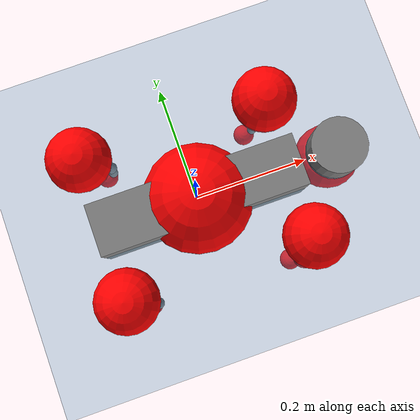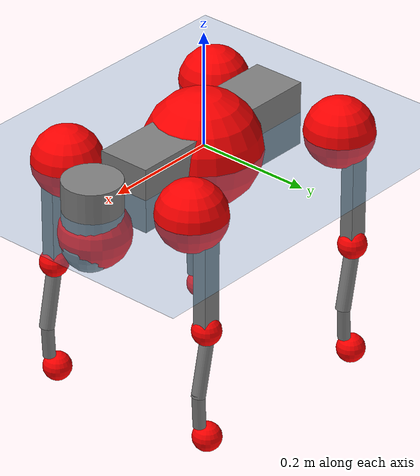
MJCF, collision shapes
<mujoco model="go2">
  <compiler angle="radian" assetdir="assets" balanceinertia="true" inertiafromgeom="false"/>

  <option timestep="0.005" density="1.2" viscosity="2e-05"/>

  <size nkey="1"/>

  <visual>
    <quality shadowsize="8192"/>
    <map shadowclip="0.5"/>
  </visual>

  <default>
    <default class="/">
      <geom contype="0" conaffinity="0" group="1" solref="-1000 -80"/>
      <site size="0.01 0.005 0.005" group="5"/>
      <general forcelimited="true" biastype="affine" gainprm="20" biasprm="0 -20 -0.5"/>
      <default class="go2">
        <joint armature="0.01" damping="0.01" frictionloss="0.2"/>
        <geom condim="1" margin="0.001"/>
        <default class="visual">
          <geom type="mesh" group="2"/>
        </default>
        <default class="collision">
          <geom group="3"/>
          <default class="foot">
            <geom size="0.022 0 0" condim="6" priority="1" friction="0.8 0.02 0.01" solimp="0.015 1 0.022"/>
          </default>
        </default>
        <default class="reward_collision_sphere">
          <geom group="5" rgba="1 0 0 1"/>
        </default>
      </default>
    </default>
  </default>

  <asset>
    <texture type="skybox" colorspace="auto" name="//unnamed_texture_0" builtin="gradient" rgb1="0.95 0.95 0.95" rgb2="0.95 0.95 0.95" width="100" height="600"/>
    <texture type="2d" colorspace="auto" name="texplane" builtin="checker" rgb1="0.345 0.575 0.748" rgb2="0.345 0.575 0.748" markrgb="1 1 1" width="512" height="512"/>
    <material name="MatPlane" class="/" texture="texplane" texuniform="true" texrepeat="2 2" specular="0.9"/>
    <material name="metal" class="/" rgba="0.9 0.95 0.95 1"/>
    <material name="black" class="/" rgba="0 0 0 1"/>
    <material name="white" class="/"/>
    <material name="gray" class="/" rgba="0.671705 0.692426 0.77427 1"/>
    <mesh name="base_0" class="/" file="base_0.obj"/>
    <mesh name="base_1" class="/" file="base_1.obj"/>
    <mesh name="base_2" class="/" file="base_2.obj"/>
    <mesh name="base_3" class="/" file="base_3.obj"/>
    <mesh name="base_4" class="/" file="base_4.obj"/>
    <mesh name="hip_0" class="/" file="hip_0.obj"/>
    <mesh name="hip_1" class="/" file="hip_1.obj"/>
    <mesh name="thigh_0" class="/" file="thigh_0.obj"/>
    <mesh name="thigh_1" class="/" file="thigh_1.obj"/>
    <mesh name="thigh_mirror_0" class="/" file="thigh_mirror_0.obj"/>
    <mesh name="thigh_mirror_1" class="/" file="thigh_mirror_1.obj"/>
    <mesh name="calf_0" class="/" file="calf_0.obj"/>
    <mesh name="calf_1" class="/" file="calf_1.obj"/>
    <mesh name="calf_mirror_0" class="/" file="calf_mirror_0.obj"/>
    <mesh name="calf_mirror_1" class="/" file="calf_mirror_1.obj"/>
    <mesh name="foot" class="/" file="foot.obj"/>
  </asset>

  <worldbody>
    <geom name="floor" class="/" size="100 100 0.125" type="plane" group="0" material="MatPlane"/>
    <light name="toplight_shadow" class="/" pos="0 0 5" dir="0.0990148 0.0990148 -0.990148" type="directional" ambient="0.04 0.04 0.04" diffuse="0.55 0.55 0.55" specular="0.12 0.12 0.12"/>
    <light name="toplight_fill" class="/" pos="0 0 5" dir="0.0990148 0.0990148 -0.990148" type="directional" castshadow="false" ambient="0.04 0.04 0.04" diffuse="0.3 0.3 0.3" specular="0.08 0.08 0.08"/>
    <body name="trunk" childclass="go2" pos="0.00115636 -0.00169237 -0.00271516" quat="1 -0.000135612 -9.16759e-06 0.000355527">
      <inertial pos="0.0204774 0.000205253 -0.00435531" quat="0.00530023 0.709732 -0.0127744 0.704336" mass="6.73352" diaginertia="0.058802 0.168284 0.017186"/>
      <joint name="//unnamed_joint_0" type="free" armature="0" damping="0" frictionloss="0"/>
      <geom name="//unnamed_geom_1" class="visual" material="black" mesh="base_0"/>
      <geom name="//unnamed_geom_2" class="visual" material="black" mesh="base_1"/>
      <geom name="//unnamed_geom_3" class="visual" material="black" mesh="base_2"/>
      <geom name="//unnamed_geom_4" class="visual" material="white" mesh="base_3"/>
      <geom name="//unnamed_geom_5" class="visual" material="gray" mesh="base_4"/>
      <geom name="trunk_1" class="collision" size="0.183835 0.0456899 0.0557074" type="box"/>
      <geom name="trunk_2" class="collision" size="0.0488662 0.0439796" pos="0.253718 0 0.00929704" type="cylinder"/>
      <geom name="trunk_3" class="collision" size="0.0459342" pos="0.26084 0 -0.0557822"/>
      <geom name="//unnamed_geom_9" class="reward_collision_sphere" size="0.0977323"/>
      <geom name="//unnamed_geom_10" class="reward_collision_sphere" size="0.0586394" pos="0.249267 0 -0.0418367"/>
      <site name="imu" pos="-0.0274945 0.0133302 0.0280478" size="0.00977323"/>
      <camera name="track" pos="0 -2.22406 0" quat="0.707107 0.707107 0 0" mode="trackcom"/>
      <camera name="ego_camera" pos="0.277754 0 0.0418367" quat="-0.5 -0.5 0.5 0.5"/>
      <body name="FL_hip" pos="0.170019 0.0494202 0.002541" quat="1 -7.34169e-05 -0.000218103 -0.00050892">
        <inertial pos="-0.00297958 -0.000230164 -0.00269796" quat="0.496395 0.502137 0.504077 0.49735" mass="0.628648" diaginertia="0.000488293 0.0010231 0.000344197"/>
        <joint name="FL_hip_joint" pos="0 0 0" axis="0.999952 0.00784227 -0.0058458" range="-1.0392 1.04505" armature="0.0103644" damping="0.000633614" frictionloss="0.222287"/>
        <geom name="//unnamed_geom_11" class="visual" material="metal" mesh="hip_0"/>
        <geom name="//unnamed_geom_12" class="visual" material="gray" mesh="hip_1"/>
        <geom name="//unnamed_geom_13" class="collision" size="0.0449569 0.0195465" pos="0 0.0889623 0" quat="0.707107 0.707107 0 0" type="cylinder"/>
        <geom name="//unnamed_geom_14" class="reward_collision_sphere" size="0.0586394" pos="0 0.077842 0"/>
        <body name="FL_thigh" pos="-0.000433954 0.106612 0.00279375" quat="1 0.000149618 1.23084e-05 0.000450763">
          <inertial pos="-0.00449165 -0.0245505 -0.0305968" quat="0.829372 0.0827164 -0.0196131 0.552191" mass="1.0427" diaginertia="0.00331558 0.0101658 0.000587247"/>
          <joint name="FL_thigh_joint" pos="0 0 0" axis="0.00174957 0.999961 -0.00870051" range="-1.58374 3.51223" armature="0.0103493" damping="0.0117131" frictionloss="0.221326"/>
          <geom name="//unnamed_geom_15" class="visual" material="metal" mesh="thigh_0"/>
          <geom name="//unnamed_geom_16" class="visual" material="gray" mesh="thigh_1"/>
          <geom name="//unnamed_geom_17" class="collision" size="0.104085 0.0119722 0.0166145" pos="0 0 -0.0990135" quat="0.707107 0 0.707107 0" type="box"/>
          <body name="FL_calf" pos="-0.00019076 0.00071699 -0.198469" quat="0.999999 -0.000920468 -0.000285722 0.000409597">
            <inertial pos="0.00786699 0.00194967 -0.132748" quat="0.710702 0.00147357 -0.00454192 0.703477" mass="0.231287" diaginertia="0.000804759 0.00256422 3.59296e-05"/>
            <joint name="FL_calf_joint" pos="0 0 0" axis="-0.000292691 1 0.000191606" range="-2.72927 -0.847573" armature="0.00842944" damping="0.00133908" frictionloss="0.188423"/>
            <geom name="//unnamed_geom_18" class="visual" material="gray" mesh="calf_0"/>
            <geom name="//unnamed_geom_19" class="visual" material="black" mesh="calf_1"/>
            <geom name="FL_calf0" class="collision" size="0.0117279 0.0586394" pos="0.0071219 0 -0.0557822" quat="0.994493 0 -0.104807 0" type="cylinder"/>
            <geom name="//unnamed_geom_21" class="collision" size="0.0107506 0.031763" pos="0.0178048 0 -0.137596" quat="0.999688 0 0.0249974 0" type="cylinder"/>
            <geom name="//unnamed_geom_22" class="visual" pos="0 0 -0.198027" quat="1 0 0 0" material="black" mesh="foot"/>
            <geom name="FL_foot" class="foot" size="0.0232206" pos="-0.00178048 0 -0.198027"/>
            <geom name="//unnamed_geom_24" class="reward_collision_sphere" size="0.0244331"/>
            <geom name="//unnamed_geom_25" class="reward_collision_sphere" size="0.0244331" pos="-0.00178048 0 -0.198027"/>
            <site name="FL_foot" class="foot" pos="-0.00178048 0 -0.198027" size="0.00977323"/>
          </body>
        </body>
      </body>
      <body name="FR_hip" pos="0.171537 -0.0519699 0.00065679" quat="0.999999 -0.00115788 0.000529614 -0.000594295">
        <inertial pos="-0.00398762 0.000114685 -0.000437192" quat="0.496667 0.508223 0.500085 0.49492" mass="0.623697" diaginertia="0.000498969 0.00101265 0.000331581"/>
        <joint name="FR_hip_joint" pos="0 0 0" axis="0.999999 3.57758e-06 -0.00110712" stiffness="0.00167836" range="-1.0008 1.04804" armature="0.010517" damping="0.00306379" frictionloss="0.182663"/>
        <geom name="//unnamed_geom_26" class="visual" pos="0 1.58834e-09 6.81271e-08" quat="4.63268e-05 1 0 0" material="metal" mesh="hip_0"/>
        <geom name="//unnamed_geom_27" class="visual" pos="0 2.57489e-09 -1.68504e-07" quat="4.63268e-05 1 0 0" material="gray" mesh="hip_1"/>
        <geom name="//unnamed_geom_28" class="collision" size="0.0449569 0.0195465" pos="0 -0.0889623 0" quat="0.707107 0.707107 0 0" type="cylinder"/>
        <geom name="//unnamed_geom_29" class="reward_collision_sphere" size="0.0586394" pos="0 -0.077842 0"/>
        <body name="FR_thigh" pos="-0.000389378 -0.108595 -0.000256837" quat="1 -0.000259478 4.87013e-05 1.94336e-05">
          <inertial pos="-0.00480811 0.026556 -0.0326761" quat="0.550733 -0.0204567 0.0882238 0.829754" mass="1.06563" diaginertia="0.00319444 0.00927517 0.000583943"/>
          <joint name="FR_thigh_joint" pos="0 0 0" axis="-0.00195299 -0.999895 -0.0143487" range="-3.53949 1.51373" armature="0.00968661" damping="0.005503" frictionloss="0.222388"/>
          <geom name="//unnamed_geom_30" class="visual" material="metal" mesh="thigh_mirror_0"/>
          <geom name="//unnamed_geom_31" class="visual" material="gray" mesh="thigh_mirror_1"/>
          <geom name="//unnamed_geom_32" class="collision" size="0.104085 0.0119722 0.0166145" pos="0 0 -0.0990135" quat="0.707107 0 0.707107 0" type="box"/>
          <body name="FR_calf" pos="0.00200414 -0.00109486 -0.198081" quat="1 8.19698e-05 -1.48665e-05 1.29914e-05">
            <inertial pos="0.00813781 0.000196841 -0.134015" quat="0.703209 -0.00438641 -0.00218842 0.710966" mass="0.233349" diaginertia="0.000843024 0.00246041 3.68269e-05"/>
            <joint name="FR_calf_joint" pos="0 0 0" axis="0.00127366 -0.999998 0.00182049" range="0.846478 2.72404" armature="0.00949753" damping="0.0210728" frictionloss="0.215724"/>
            <geom name="//unnamed_geom_33" class="visual" material="gray" mesh="calf_mirror_0"/>
            <geom name="//unnamed_geom_34" class="visual" material="black" mesh="calf_mirror_1"/>
            <geom name="FR_calf0" class="collision" size="0.0127052 0.0586394" pos="0.00890238 0 -0.0557822" quat="0.995004 0 -0.0998334 0" type="cylinder"/>
            <geom name="//unnamed_geom_36" class="collision" size="0.0107506 0.031763" pos="0.0178048 0 -0.137596" quat="0.999688 0 0.0249974 0" type="cylinder"/>
            <geom name="//unnamed_geom_37" class="visual" pos="0 0 -0.198027" quat="1 0 0 0" material="black" mesh="foot"/>
            <geom name="FR_foot" class="foot" size="0.0243575" pos="-0.00178048 0 -0.198027"/>
            <geom name="//unnamed_geom_39" class="reward_collision_sphere" size="0.0244331"/>
            <geom name="//unnamed_geom_40" class="reward_collision_sphere" size="0.0244331" pos="-0.00178048 0 -0.198027"/>
            <site name="FR_foot" class="foot" pos="-0.00178048 0 -0.198027" size="0.00977323"/>
          </body>
        </body>
      </body>
      <body name="RL_hip" pos="-0.175292 0.0553325 0.00262545" quat="0.999999 0.00053198 0.000998455 -0.000667141">
        <inertial pos="0.00399113 0.00158933 0.00059617" quat="0.505566 0.497903 0.497004 0.499483" mass="0.641539" diaginertia="0.000488769 0.00102219 0.000321426"/>
        <joint name="RL_hip_joint" pos="0 0 0" axis="-0.999697 -0.0229453 -0.00894124" stiffness="0.00771484" range="-1.0777 1.05392" armature="0.00986915" damping="0.0130883" frictionloss="0.22177"/>
        <geom name="//unnamed_geom_41" class="visual" pos="3.4381e-10 0 6.73947e-08" quat="4.63268e-05 0 1 0" material="metal" mesh="hip_0"/>
        <geom name="//unnamed_geom_42" class="visual" pos="5.57357e-10 0 5.97695e-08" quat="4.63268e-05 0 1 0" material="gray" mesh="hip_1"/>
        <geom name="//unnamed_geom_43" class="collision" size="0.0449569 0.0195465" pos="0 0.0889623 0" quat="0.707107 0.707107 0 0" type="cylinder"/>
        <geom name="//unnamed_geom_44" class="reward_collision_sphere" size="0.0586394" pos="0 0.077842 0"/>
        <body name="RL_thigh" pos="0.00111353 0.109263 0.00145505" quat="1 -0.000336854 0.000307764 0.000205902">
          <inertial pos="-0.0022146 -0.0257237 -0.0316977" quat="0.829684 0.084644 -0.0201652 0.55141" mass="1.06766" diaginertia="0.00341987 0.00979529 0.000629278"/>
          <joint name="RL_thigh_joint" pos="0 0 0" axis="0.0027634 0.999996 -0.000795492" range="-0.536058 4.5572" armature="0.00893277" damping="0.0137451" frictionloss="0.169834"/>
          <geom name="//unnamed_geom_45" class="visual" material="metal" mesh="thigh_0"/>
          <geom name="//unnamed_geom_46" class="visual" material="gray" mesh="thigh_1"/>
          <geom name="//unnamed_geom_47" class="collision" size="0.104085 0.0119722 0.0166145" pos="0 0 -0.0990135" quat="0.707107 0 0.707107 0" type="box"/>
          <body name="RL_calf" pos="0.00182059 0.00164337 -0.194608" quat="1 0.000136104 5.70329e-05 7.08229e-05">
            <inertial pos="0.00553119 -0.00037261 -0.12911" quat="0.711124 -0.00058476 -0.00393465 0.703056" mass="0.226571" diaginertia="0.000829601 0.00244702 3.69922e-05"/>
            <joint name="RL_calf_joint" pos="0 0 0" axis="-5.33798e-05 0.999997 0.00231849" stiffness="0.00335553" range="-2.76825 -0.833512" armature="0.00857318" damping="0.0126357" frictionloss="0.205014"/>
            <geom name="//unnamed_geom_48" class="visual" material="gray" mesh="calf_0"/>
            <geom name="//unnamed_geom_49" class="visual" material="black" mesh="calf_1"/>
            <geom name="RL_calf0" class="collision" size="0.0127052 0.0586394" pos="0.00890238 0 -0.0557822" quat="0.995004 0 -0.0998334 0" type="cylinder"/>
            <geom name="//unnamed_geom_51" class="collision" size="0.0107506 0.031763" pos="0.0178048 0 -0.137596" quat="0.999688 0 0.0249974 0" type="cylinder"/>
            <geom name="//unnamed_geom_52" class="visual" pos="0 0 -0.198027" quat="1 0 0 0" material="black" mesh="foot"/>
            <geom name="RL_foot" class="foot" size="0.0216466" pos="-0.00178048 0 -0.198027"/>
            <geom name="//unnamed_geom_54" class="reward_collision_sphere" size="0.0244331"/>
            <geom name="//unnamed_geom_55" class="reward_collision_sphere" size="0.0244331" pos="-0.00178048 0 -0.198027"/>
            <site name="RL_foot" class="foot" pos="-0.00178048 0 -0.198027" size="0.00977323"/>
          </body>
        </body>
      </body>
      <body name="RR_hip" pos="-0.173718 -0.0498994 0.0014475" quat="0.999999 0.000955726 -0.000260275 -0.000182663">
        <inertial pos="0.00425861 -0.00131214 3.46847e-05" quat="0.498328 0.498508 0.498242 0.50489" mass="0.638901" diaginertia="0.000514889 0.00105246 0.000325754"/>
        <joint name="RR_hip_joint" pos="0 0 0" axis="-0.999981 -0.00346717 0.00504042" range="-1.02233 1.05741" armature="0.00925677" damping="0" frictionloss="0.194169"/>
        <geom name="//unnamed_geom_56" class="visual" pos="-3.36132e-10 1.58834e-09 -7.32439e-10" quat="2.14617e-09 4.63268e-05 4.63268e-05 -1" material="metal" mesh="hip_0"/>
        <geom name="//unnamed_geom_57" class="visual" pos="-5.76349e-10 2.57489e-09 2.28274e-07" quat="2.14617e-09 4.63268e-05 4.63268e-05 -1" material="gray" mesh="hip_1"/>
        <geom name="//unnamed_geom_58" class="collision" size="0.0449569 0.0195465" pos="0 -0.0889623 0" quat="0.707107 0.707107 0 0" type="cylinder"/>
        <geom name="//unnamed_geom_59" class="reward_collision_sphere" size="0.0586394" pos="0 -0.077842 0"/>
        <body name="RR_thigh" pos="0.000750522 -0.108114 5.56318e-05" quat="0.999999 0.000366227 -0.000302487 -0.000943751">
          <inertial pos="-0.00350008 0.0223284 -0.0311682" quat="0.550984 -0.0201553 0.0850281 0.829928" mass="1.00456" diaginertia="0.00310536 0.00964246 0.000592559"/>
          <joint name="RR_thigh_joint" pos="0 0 0" axis="-0.0060472 -0.999925 0.0106623" range="-4.52955 0.568549" armature="0.0109247" damping="0.00356267" frictionloss="0.173711"/>
          <geom name="//unnamed_geom_60" class="visual" material="metal" mesh="thigh_mirror_0"/>
          <geom name="//unnamed_geom_61" class="visual" material="gray" mesh="thigh_mirror_1"/>
          <geom name="//unnamed_geom_62" class="collision" size="0.104085 0.0119722 0.0166145" pos="0 0 -0.0990135" quat="0.707107 0 0.707107 0" type="box"/>
          <body name="RR_calf" pos="0.00247602 0.00184166 -0.198941" quat="1 0.000171396 0.000189382 -0.000260396">
            <inertial pos="0.00332031 0.000768933 -0.129079" quat="0.703216 -0.000185148 0.0144062 0.71083" mass="0.223992" diaginertia="0.000874681 0.00248624 3.84772e-05"/>
            <joint name="RR_calf_joint" pos="0 0 0" axis="-0.0117435 -0.999931 -0.000717511" range="0.867495 2.67393" armature="0.00919823" damping="0.0174544" frictionloss="0.217352"/>
            <geom name="//unnamed_geom_63" class="visual" material="gray" mesh="calf_mirror_0"/>
            <geom name="//unnamed_geom_64" class="visual" material="black" mesh="calf_mirror_1"/>
            <geom name="RR_calf0" class="collision" size="0.0127052 0.0586394" pos="0.00890238 0 -0.0557822" quat="0.995004 0 -0.0998334 0" type="cylinder"/>
            <geom name="//unnamed_geom_66" class="collision" size="0.0107506 0.031763" pos="0.0178048 0 -0.137596" quat="0.999688 0 0.0249974 0" type="cylinder"/>
            <geom name="//unnamed_geom_67" class="visual" pos="0 0 -0.198027" quat="1 0 0 0" material="black" mesh="foot"/>
            <geom name="RR_foot" class="foot" size="0.020494" pos="-0.00178048 0 -0.198027"/>
            <geom name="//unnamed_geom_69" class="reward_collision_sphere" size="0.0244331"/>
            <geom name="//unnamed_geom_70" class="reward_collision_sphere" size="0.0244331" pos="-0.00178048 0 -0.198027"/>
            <site name="RR_foot" class="foot" pos="-0.00178048 0 -0.198027" size="0.00977323"/>
          </body>
        </body>
      </body>
    </body>
  </worldbody>

  <contact>
    <pair class="/" geom1="floor" geom2="FL_foot" name="//unnamed_contact_0"/>
    <pair class="/" geom1="floor" geom2="FR_foot" name="//unnamed_contact_1"/>
    <pair class="/" geom1="floor" geom2="RL_foot" name="//unnamed_contact_2"/>
    <pair class="/" geom1="floor" geom2="RR_foot" name="//unnamed_contact_3"/>
  </contact>

  <actuator>
    <general name="FL_hip" class="/" joint="FL_hip_joint" forcerange="-23.4966 23.4966" gainprm="19.7332" biasprm="0 -19.7332 -0.49094"/>
    <general name="FL_thigh" class="/" joint="FL_thigh_joint" forcerange="-20.9559 20.9559" gainprm="19.7332" biasprm="0 -19.7332 -0.49094"/>
    <general name="FL_calf" class="/" joint="FL_calf_joint" forcerange="-45.2689 45.2689" gainprm="19.7332" biasprm="0 -19.7332 -0.49094"/>
    <general name="FR_hip" class="/" joint="FR_hip_joint" forcerange="-21.3918 21.3918" gainprm="19.7332" biasprm="0 -19.7332 -0.49094"/>
    <general name="FR_thigh" class="/" joint="FR_thigh_joint" forcerange="-22.6016 22.6016" gainprm="19.7332" biasprm="0 -19.7332 -0.49094"/>
    <general name="FR_calf" class="/" joint="FR_calf_joint" forcerange="-42.0506 42.0506" gainprm="19.7332" biasprm="0 -19.7332 -0.49094"/>
    <general name="RL_hip" class="/" joint="RL_hip_joint" forcerange="-22.9455 22.9455" gainprm="19.7332" biasprm="0 -19.7332 -0.49094"/>
    <general name="RL_thigh" class="/" joint="RL_thigh_joint" forcerange="-23.1235 23.1235" gainprm="19.7332" biasprm="0 -19.7332 -0.49094"/>
    <general name="RL_calf" class="/" joint="RL_calf_joint" forcerange="-44.6757 44.6757" gainprm="19.7332" biasprm="0 -19.7332 -0.49094"/>
    <general name="RR_hip" class="/" joint="RR_hip_joint" forcerange="-23.705 23.705" gainprm="19.7332" biasprm="0 -19.7332 -0.49094"/>
    <general name="RR_thigh" class="/" joint="RR_thigh_joint" forcerange="-21.0092 21.0092" gainprm="19.7332" biasprm="0 -19.7332 -0.49094"/>
    <general name="RR_calf" class="/" joint="RR_calf_joint" forcerange="-43.5636 43.5636" gainprm="19.7332" biasprm="0 -19.7332 -0.49094"/>
  </actuator>

  <sensor>
    <gyro site="imu" name="imu_angular_velocity"/>
    <velocimeter site="imu" name="imu_linear_velocity"/>
    <framelinvel objtype="site" objname="FL_foot" name="FL_foot_global_linear_velocity"/>
    <framelinvel objtype="site" objname="FR_foot" name="FR_foot_global_linear_velocity"/>
    <framelinvel objtype="site" objname="RL_foot" name="RL_foot_global_linear_velocity"/>
    <framelinvel objtype="site" objname="RR_foot" name="RR_foot_global_linear_velocity"/>
  </sensor>

  <keyframe>
    <key name="home" qpos="0 0 0.325 1 0 0 0 0.1 0.8 -1.5 -0.1 -0.8 1.5 -0.1 0.8 -1.5 0.1 -0.8 1.5"/>
  </keyframe>
</mujoco>
